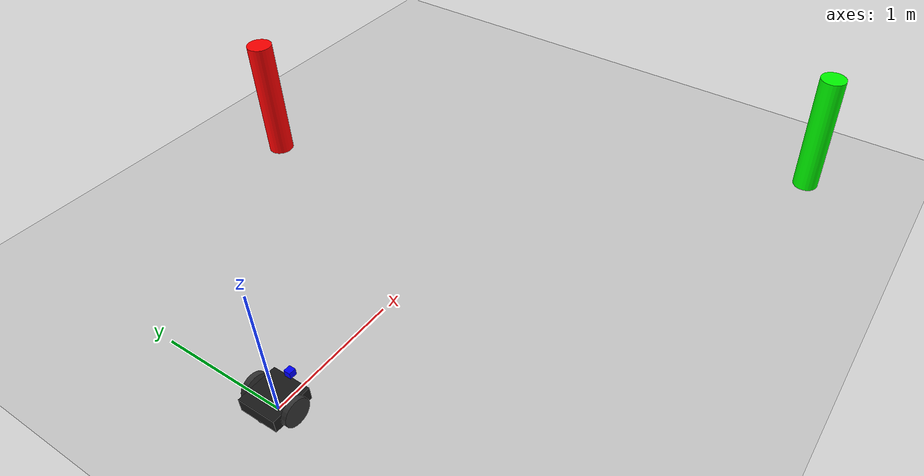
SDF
<?xml version="1.0" ?>
<sdf version="1.8">
  <world name="vio_world">
    <physics name="1ms" type="ignored">
      <max_step_size>0.001</max_step_size>
      <real_time_factor>1.0</real_time_factor>
    </physics>

    <plugin name='gz::sim::systems::Physics' filename='gz-sim-physics-system'/>
    <plugin name='gz::sim::systems::UserCommands' filename='gz-sim-user-commands-system'/>
    <plugin name='gz::sim::systems::SceneBroadcaster' filename='gz-sim-scene-broadcaster-system'/>
    <plugin name='gz::sim::systems::Contact' filename='gz-sim-contact-system'/>
    <plugin name='gz::sim::systems::Imu' filename='gz-sim-imu-system'/>
    <plugin name='gz::sim::systems::Sensors' filename='gz-sim-sensors-system'>
      <render_engine>ogre2</render_engine>
    </plugin>

    <!-- Light -->
    <light type="directional" name="sun">
      <cast_shadows>true</cast_shadows>
      <pose>0 0 10 0 0 0</pose>
      <diffuse>0.8 0.8 0.8 1</diffuse>
      <specular>0.2 0.2 0.2 1</specular>
      <direction>-0.5 0.1 -0.9</direction>
    </light>

    <!-- Ground Plane -->
    <model name="ground_plane">
      <static>true</static>
      <link name="link">
        <collision name="collision">
          <geometry><plane><normal>0 0 1</normal><size>100 100</size></plane></geometry>
        </collision>
        <visual name="visual">
          <geometry><plane><normal>0 0 1</normal><size>100 100</size></plane></geometry>
          <material>
            <ambient>0.8 0.8 0.8 1</ambient>
            <diffuse>0.8 0.8 0.8 1</diffuse>
          </material>
        </visual>
      </link>
    </model>

    <!-- Robot Model (Simplified Turtlebot-like) -->
    <model name="vio_robot">
      <pose>0 0 0.1 0 0 0</pose>
      <link name="base_link">
        <inertial>
          <mass>1.0</mass>
          <inertia>
             <ixx>0.01</ixx><ixy>0</ixy><ixz>0</ixz>
             <iyy>0.01</iyy><iyz>0</iyz>
             <izz>0.01</izz>
          </inertia>
        </inertial>
        <visual name="visual">
          <geometry><box><size>0.3 0.3 0.1</size></box></geometry>
          <material><ambient>0.1 0.1 0.1 1</ambient></material>
        </visual>
        <collision name="collision">
          <geometry><box><size>0.3 0.3 0.1</size></box></geometry>
        </collision>
      </link>

      <!-- Left Wheel -->
      <link name="left_wheel">
        <pose>0 0.17 0 -1.5707 0 0</pose>
        <inertial>
          <mass>0.1</mass>
          <inertia>
            <ixx>0.001</ixx><iyy>0.001</iyy><izz>0.001</izz>
          </inertia>
        </inertial>
        <visual name="visual">
          <geometry><cylinder><radius>0.1</radius><length>0.04</length></cylinder></geometry>
          <material><ambient>0.2 0.2 0.2 1</ambient></material>
        </visual>
        <collision name="collision">
          <geometry><cylinder><radius>0.1</radius><length>0.04</length></cylinder></geometry>
        </collision>
      </link>

      <joint name="left_wheel_joint" type="revolute">
        <parent>base_link</parent>
        <child>left_wheel</child>
        <axis>
          <xyz>0 0 1</xyz>
          <limit><lower>-1.79769e+308</lower><upper>1.79769e+308</upper></limit>
        </axis>
      </joint>

      <!-- Right Wheel -->
      <link name="right_wheel">
        <pose>0 -0.17 0 -1.5707 0 0</pose>
        <inertial>
          <mass>0.1</mass>
          <inertia>
            <ixx>0.001</ixx><iyy>0.001</iyy><izz>0.001</izz>
          </inertia>
        </inertial>
        <visual name="visual">
          <geometry><cylinder><radius>0.1</radius><length>0.04</length></cylinder></geometry>
          <material><ambient>0.2 0.2 0.2 1</ambient></material>
        </visual>
        <collision name="collision">
          <geometry><cylinder><radius>0.1</radius><length>0.04</length></cylinder></geometry>
        </collision>
      </link>

      <joint name="right_wheel_joint" type="revolute">
        <parent>base_link</parent>
        <child>right_wheel</child>
        <axis>
          <xyz>0 0 1</xyz>
          <limit><lower>-1.79769e+308</lower><upper>1.79769e+308</upper></limit>
        </axis>
      </joint>

      <!-- Caster Wheel (for stability) -->
      <link name="caster">
        <pose>-0.1 0 -0.05 0 0 0</pose>
        <inertial>
          <mass>0.05</mass>
          <inertia>
            <ixx>0.0001</ixx><iyy>0.0001</iyy><izz>0.0001</izz>
          </inertia>
        </inertial>
        <visual name="visual">
          <geometry><sphere><radius>0.05</radius></sphere></geometry>
          <material><ambient>0.3 0.3 0.3 1</ambient></material>
        </visual>
        <collision name="collision">
          <geometry><sphere><radius>0.05</radius></sphere></geometry>
          <surface>
            <friction><ode><mu>0.0</mu><mu2>0.0</mu2></ode></friction>
          </surface>
        </collision>
      </link>

      <joint name="caster_joint" type="fixed">
        <parent>base_link</parent>
        <child>caster</child>
      </joint>

      <!-- IMU Link & Sensor -->
      <link name="imu_link">
        <pose>0 0 0.05 0 0 0</pose>
        <inertial>
          <mass>0.01</mass>
          <inertia>
            <ixx>0.0001</ixx><iyy>0.0001</iyy><izz>0.0001</izz>
          </inertia>
        </inertial>
        <sensor name="imu_sensor" type="imu">
          <always_on>true</always_on>
          <update_rate>200</update_rate>
          <visualize>true</visualize>
          <topic>/imu</topic>
        </sensor>
      </link>

      <joint name="imu_joint" type="fixed">
        <parent>base_link</parent>
        <child>imu_link</child>
      </joint>

      <!-- Camera Link & Sensor -->
      <link name="camera_link">
        <pose>0.15 0 0.1 0 0 0</pose>
        <inertial>
           <mass>0.1</mass>
           <inertia><ixx>0.001</ixx><iyy>0.001</iyy><izz>0.001</izz></inertia>
        </inertial>
        <visual name="cam_visual">
           <geometry><box><size>0.05 0.05 0.05</size></box></geometry>
           <material><ambient>0 0 1 1</ambient></material>
        </visual>
        <sensor name="camera" type="camera">
          <pose>0 0 0 0 0 0</pose>
          <camera>
            <horizontal_fov>1.047</horizontal_fov>
            <image><width>640</width><height>480</height></image>
            <clip><near>0.1</near><far>100</far></clip>
          </camera>
          <always_on>true</always_on>
          <update_rate>30</update_rate>
          <visualize>true</visualize>
          <topic>/camera</topic>
        </sensor>
      </link>

      <joint name="camera_joint" type="fixed">
        <parent>base_link</parent>
        <child>camera_link</child>
      </joint>

      <!-- Diff Drive Plugin -->
      <plugin
        filename="ignition-gazebo-diff-drive-system"
        name="ignition::gazebo::systems::DiffDrive">
        <left_joint>left_wheel_joint</left_joint>
        <right_joint>right_wheel_joint</right_joint>
        <wheel_separation>0.34</wheel_separation>
        <wheel_radius>0.1</wheel_radius>
        <odom_publish_frequency>50</odom_publish_frequency>
        <topic>cmd_vel</topic>
      </plugin>

      <plugin filename="libignition-gazebo-pose-publisher-system.so"
              name="ignition::gazebo::systems::PosePublisher">
        <publish_link_pose>true</publish_link_pose>
        <publish_sensor_pose>true</publish_sensor_pose>
        <publish_collision_pose>false</publish_collision_pose>
        <publish_visual_pose>false</publish_visual_pose>
        <publish_nested_model_pose>false</publish_nested_model_pose>
        <use_pose_vector_msg>true</use_pose_vector_msg>
        <static_publisher>true</static_publisher>
        <static_update_frequency>50</static_update_frequency>
        <update_frequency>50</update_frequency>
      </plugin>
    </model>

    <!-- Landmarks (Colored Cylinders) -->
    <model name="landmark_1">
      <static>true</static>
      <pose>2 2 0.5 0 0 0</pose>
      <link name="link">
        <visual name="v">
          <geometry><cylinder><radius>0.1</radius><length>1.0</length></cylinder></geometry>
          <material><ambient>1 0 0 1</ambient><diffuse>1 0 0 1</diffuse></material>
        </visual>
      </link>
    </model>

    <model name="landmark_2">
      <static>true</static>
      <pose>4 -2 0.5 0 0 0</pose>
      <link name="link">
        <visual name="v">
          <geometry><cylinder><radius>0.1</radius><length>1.0</length></cylinder></geometry>
          <material><ambient>0 1 0 1</ambient><diffuse>0 1 0 1</diffuse></material>
        </visual>
      </link>
    </model>
  </world>
</sdf>
